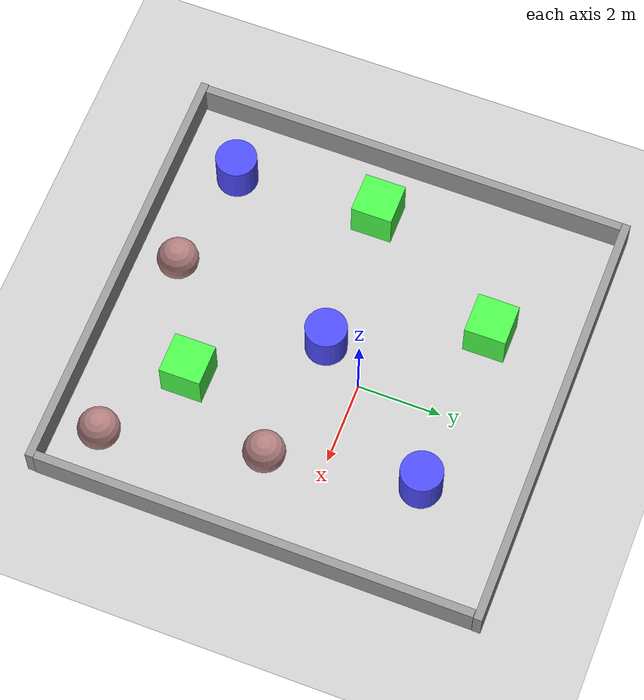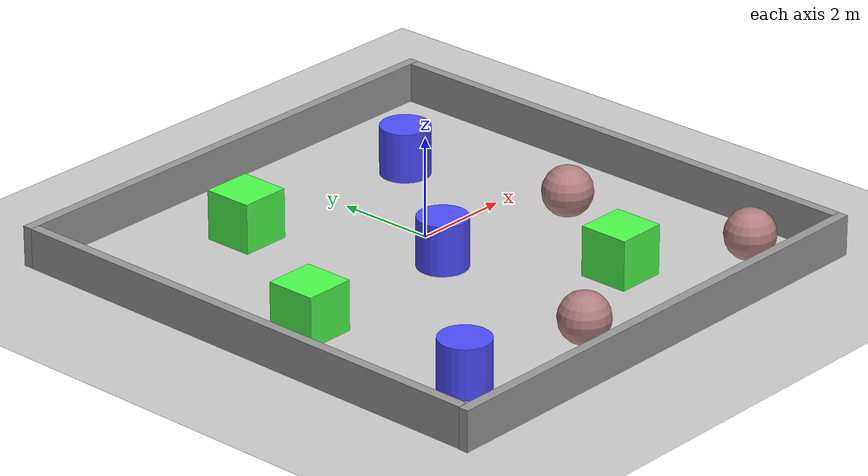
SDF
<sdf version="1.6">
 <world name="default">
  <light name="sun" type="directional">
   <pose>0 0 10 0 -0 0</pose>
   <diffuse>0.8 0.8 0.8 1</diffuse>
   <specular>0.1 0.1 0.1 1</specular>
   <attenuation>
    <range>1000</range>
    <constant>0.9</constant>
    <linear>0.01</linear>
    <quadratic>0.001</quadratic>
   </attenuation>
   <direction>-0.5 0.5 -1</direction>
  </light>
  <model name="ground_plane">
   <static>1</static>
   <link name="link">
    <collision name="collision">
     <geometry><plane><normal>0 0 1</normal><size>100 100</size></plane></geometry>
     <surface><friction><ode><mu>100</mu><mu2>50</mu2></ode></friction></surface>
    </collision>
    <visual name="visual">
     <cast_shadows>0</cast_shadows>
     <geometry><plane><normal>0 0 1</normal><size>100 100</size></plane></geometry>
     <material>
      <script><uri>file://media/materials/scripts/gazebo.material</uri><name>Gazebo/Grey</name></script>
     </material>
    </visual>
   </link>
  </model>
  <gravity>0 0 -9.8</gravity>
  <magnetic_field>6e-06 2.3e-05 -4.2e-05</magnetic_field>
  <atmosphere type="adiabatic"/>
  <physics name="default_physics" default="0" type="ode">
   <max_step_size>0.001</max_step_size>
   <real_time_factor>1</real_time_factor>
   <real_time_update_rate>1000</real_time_update_rate>
  </physics>
  <scene><ambient>0.4 0.4 0.4 1</ambient><background>0.7 0.7 0.7 1</background><shadows>1</shadows></scene>
  <spherical_coordinates>
   <surface_model>EARTH_WGS84</surface_model>
   <latitude_deg>0</latitude_deg>
   <longitude_deg>0</longitude_deg>
   <elevation>0</elevation>
   <heading_deg>0</heading_deg>
  </spherical_coordinates>
  <model name="unit_box_0_3_0">
   <link name="link">
    <inertial>
     <mass>1</mass>
     <inertia>
      <ixx>0.166667</ixx>
      <ixy>0</ixy>
      <ixz>0</ixz>
      <iyy>0.166667</iyy>
      <iyz>0</iyz>
      <izz>0.166667</izz>
     </inertia>
    </inertial>
    <visual name="visual">
     <geometry><box><size>1 1 1</size></box></geometry>
     <material>
      <script><name>Gazebo/Grey</name><uri>file://media/materials/scripts/gazebo.material</uri></script>
      <ambient>0.3 1 0.3 1</ambient>
      <diffuse>0.7 0.7 0.7 1</diffuse>
      <specular>0.01 0.01 0.01 1</specular>
      <emissive>0 0 0 1</emissive>
      <shader type="vertex"><normal_map>__default__</normal_map></shader>
     </material>
    </visual>
    <collision name="collision">
     <geometry><box><size>1 1 1</size></box></geometry>
     <surface>
      <friction>
       <ode><mu>1</mu><mu2>1</mu2><fdir1>0 0 0</fdir1><slip1>0</slip1><slip2>0</slip2></ode>
       <torsional>
        <coefficient>1</coefficient>
        <patch_radius>0</patch_radius>
        <surface_radius>0</surface_radius>
        <use_patch_radius>1</use_patch_radius>
        <ode><slip>0</slip></ode>
       </torsional>
      </friction>
      <bounce><restitution_coefficient>0</restitution_coefficient><threshold>1e+06</threshold></bounce>
      <contact>
       <collide_without_contact>0</collide_without_contact>
       <collide_without_contact_bitmask>1</collide_without_contact_bitmask>
       <collide_bitmask>1</collide_bitmask>
       <ode>
        <soft_cfm>0</soft_cfm>
        <soft_erp>0.2</soft_erp>
        <kp>1e+13</kp>
        <kd>1</kd>
        <max_vel>0.01</max_vel>
        <min_depth>0</min_depth>
       </ode>
       <bullet>
        <split_impulse>1</split_impulse>
        <split_impulse_penetration_threshold>-0.01</split_impulse_penetration_threshold>
        <soft_cfm>0</soft_cfm>
        <soft_erp>0.2</soft_erp>
        <kp>1e+13</kp>
        <kd>1</kd>
       </bullet>
      </contact>
     </surface>
    </collision>
   </link>
   <static>0</static>
   <pose>-4.31105 -1.13217 0.499995 -1e-05 0 0</pose>
  </model>
  <model name="unit_cylinder_0_0">
   <link name="link">
    <inertial>
     <mass>1</mass>
     <inertia><ixx>0.145833</ixx><ixy>0</ixy><ixz>0</ixz><iyy>0.145833</iyy><iyz>0</iyz><izz>0.125</izz></inertia>
    </inertial>
    <visual name="visual">
     <geometry><cylinder><radius>0.5</radius><length>1</length></cylinder></geometry>
     <material>
      <script><name>Gazebo/Grey</name><uri>file://media/materials/scripts/gazebo.material</uri></script>
      <ambient>0.3 0.3 1 1</ambient>
      <diffuse>0.7 0.7 0.7 1</diffuse>
      <specular>0.01 0.01 0.01 1</specular>
      <emissive>0 0 0 1</emissive>
      <shader type="vertex"><normal_map>__default__</normal_map></shader>
     </material>
    </visual>
    <collision name="collision">
     <geometry><cylinder><radius>0.5</radius><length>1</length></cylinder></geometry>
     <surface>
      <friction>
       <ode><mu>1</mu><mu2>1</mu2><fdir1>0 0 0</fdir1><slip1>0</slip1><slip2>0</slip2></ode>
       <torsional>
        <coefficient>1</coefficient>
        <patch_radius>0</patch_radius>
        <surface_radius>0</surface_radius>
        <use_patch_radius>1</use_patch_radius>
        <ode><slip>0</slip></ode>
       </torsional>
      </friction>
      <bounce><restitution_coefficient>0</restitution_coefficient><threshold>1e+06</threshold></bounce>
      <contact>
       <collide_without_contact>0</collide_without_contact>
       <collide_without_contact_bitmask>1</collide_without_contact_bitmask>
       <collide_bitmask>1</collide_bitmask>
       <ode>
        <soft_cfm>0</soft_cfm>
        <soft_erp>0.2</soft_erp>
        <kp>1e+13</kp>
        <kd>1</kd>
        <max_vel>0.01</max_vel>
        <min_depth>0</min_depth>
       </ode>
       <bullet>
        <split_impulse>1</split_impulse>
        <split_impulse_penetration_threshold>-0.01</split_impulse_penetration_threshold>
        <soft_cfm>0</soft_cfm>
        <soft_erp>0.2</soft_erp>
        <kp>1e+13</kp>
        <kd>1</kd>
       </bullet>
      </contact>
     </surface>
    </collision>
   </link>
   <static>0</static>
   <pose>-4.14031 -4.66591 0.499998 3e-06 2e-06 0</pose>
  </model>
  <model name="unit_sphere_0_1_1">
   <link name="link">
    <inertial>
     <mass>1</mass>
     <inertia><ixx>0.1</ixx><ixy>0</ixy><ixz>0</ixz><iyy>0.1</iyy><iyz>0</iyz><izz>0.1</izz></inertia>
    </inertial>
    <visual name="visual">
     <geometry><sphere><radius>0.5</radius></sphere></geometry>
     <material>
      <script><name>Gazebo/Grey</name><uri>file://media/materials/scripts/gazebo.material</uri></script>
      <ambient>0.7 0.5 0.5 1</ambient>
      <diffuse>0.7 0.7 0.7 1</diffuse>
      <specular>0.01 0.01 0.01 1</specular>
      <emissive>0 0 0 1</emissive>
      <shader type="vertex"><normal_map>__default__</normal_map></shader>
     </material>
    </visual>
    <collision name="collision">
     <geometry><sphere><radius>0.5</radius></sphere></geometry>
     <surface>
      <friction>
       <ode><mu>1</mu><mu2>1</mu2><fdir1>0 0 0</fdir1><slip1>0</slip1><slip2>0</slip2></ode>
       <torsional>
        <coefficient>1</coefficient>
        <patch_radius>0</patch_radius>
        <surface_radius>0</surface_radius>
        <use_patch_radius>1</use_patch_radius>
        <ode><slip>0</slip></ode>
       </torsional>
      </friction>
      <bounce><restitution_coefficient>0</restitution_coefficient><threshold>1e+06</threshold></bounce>
      <contact>
       <collide_without_contact>0</collide_without_contact>
       <collide_without_contact_bitmask>1</collide_without_contact_bitmask>
       <collide_bitmask>1</collide_bitmask>
       <ode>
        <soft_cfm>0</soft_cfm>
        <soft_erp>0.2</soft_erp>
        <kp>1e+13</kp>
        <kd>1</kd>
        <max_vel>0.01</max_vel>
        <min_depth>0</min_depth>
       </ode>
       <bullet>
        <split_impulse>1</split_impulse>
        <split_impulse_penetration_threshold>-0.01</split_impulse_penetration_threshold>
        <soft_cfm>0</soft_cfm>
        <soft_erp>0.2</soft_erp>
        <kp>1e+13</kp>
        <kd>1</kd>
       </bullet>
      </contact>
     </surface>
    </collision>
   </link>
   <static>0</static>
   <pose>-1.39119 -5.05248 0.5 0 -0 0</pose>
  </model>
  <model name="unit_box_0_3_0_clone">
   <link name="link">
    <inertial>
     <mass>1</mass>
     <inertia>
      <ixx>0.166667</ixx>
      <ixy>0</ixy>
      <ixz>0</ixz>
      <iyy>0.166667</iyy>
      <iyz>0</iyz>
      <izz>0.166667</izz>
     </inertia>
    </inertial>
    <visual name="visual">
     <geometry><box><size>1 1 1</size></box></geometry>
     <material>
      <script><name>Gazebo/Grey</name><uri>file://media/materials/scripts/gazebo.material</uri></script>
      <ambient>0.3 1 0.3 1</ambient>
      <diffuse>0.7 0.7 0.7 1</diffuse>
      <specular>0.01 0.01 0.01 1</specular>
      <emissive>0 0 0 1</emissive>
      <shader type="vertex"><normal_map>__default__</normal_map></shader>
     </material>
    </visual>
    <collision name="collision">
     <geometry><box><size>1 1 1</size></box></geometry>
     <surface>
      <friction>
       <ode><mu>1</mu><mu2>1</mu2><fdir1>0 0 0</fdir1><slip1>0</slip1><slip2>0</slip2></ode>
       <torsional>
        <coefficient>1</coefficient>
        <patch_radius>0</patch_radius>
        <surface_radius>0</surface_radius>
        <use_patch_radius>1</use_patch_radius>
        <ode><slip>0</slip></ode>
       </torsional>
      </friction>
      <bounce><restitution_coefficient>0</restitution_coefficient><threshold>1e+06</threshold></bounce>
      <contact>
       <collide_without_contact>0</collide_without_contact>
       <collide_without_contact_bitmask>1</collide_without_contact_bitmask>
       <collide_bitmask>1</collide_bitmask>
       <ode>
        <soft_cfm>0</soft_cfm>
        <soft_erp>0.2</soft_erp>
        <kp>1e+13</kp>
        <kd>1</kd>
        <max_vel>0.01</max_vel>
        <min_depth>0</min_depth>
       </ode>
       <bullet>
        <split_impulse>1</split_impulse>
        <split_impulse_penetration_threshold>-0.01</split_impulse_penetration_threshold>
        <soft_cfm>0</soft_cfm>
        <soft_erp>0.2</soft_erp>
        <kp>1e+13</kp>
        <kd>1</kd>
       </bullet>
      </contact>
     </surface>
    </collision>
   </link>
   <static>0</static>
   <pose>1.16836 -3.73906 0.499995 -1e-05 0 0</pose>
  </model>
  <model name="unit_cylinder_0_0_clone">
   <link name="link">
    <inertial>
     <mass>1</mass>
     <inertia><ixx>0.145833</ixx><ixy>0</ixy><ixz>0</ixz><iyy>0.145833</iyy><iyz>0</iyz><izz>0.125</izz></inertia>
    </inertial>
    <visual name="visual">
     <geometry><cylinder><radius>0.5</radius><length>1</length></cylinder></geometry>
     <material>
      <script><name>Gazebo/Grey</name><uri>file://media/materials/scripts/gazebo.material</uri></script>
      <ambient>0.3 0.3 1 1</ambient>
      <diffuse>0.7 0.7 0.7 1</diffuse>
      <specular>0.01 0.01 0.01 1</specular>
      <emissive>0 0 0 1</emissive>
      <shader type="vertex"><normal_map>__default__</normal_map></shader>
     </material>
    </visual>
    <collision name="collision">
     <geometry><cylinder><radius>0.5</radius><length>1</length></cylinder></geometry>
     <surface>
      <friction>
       <ode><mu>1</mu><mu2>1</mu2><fdir1>0 0 0</fdir1><slip1>0</slip1><slip2>0</slip2></ode>
       <torsional>
        <coefficient>1</coefficient>
        <patch_radius>0</patch_radius>
        <surface_radius>0</surface_radius>
        <use_patch_radius>1</use_patch_radius>
        <ode><slip>0</slip></ode>
       </torsional>
      </friction>
      <bounce><restitution_coefficient>0</restitution_coefficient><threshold>1e+06</threshold></bounce>
      <contact>
       <collide_without_contact>0</collide_without_contact>
       <collide_without_contact_bitmask>1</collide_without_contact_bitmask>
       <collide_bitmask>1</collide_bitmask>
       <ode>
        <soft_cfm>0</soft_cfm>
        <soft_erp>0.2</soft_erp>
        <kp>1e+13</kp>
        <kd>1</kd>
        <max_vel>0.01</max_vel>
        <min_depth>0</min_depth>
       </ode>
       <bullet>
        <split_impulse>1</split_impulse>
        <split_impulse_penetration_threshold>-0.01</split_impulse_penetration_threshold>
        <soft_cfm>0</soft_cfm>
        <soft_erp>0.2</soft_erp>
        <kp>1e+13</kp>
        <kd>1</kd>
       </bullet>
      </contact>
     </surface>
    </collision>
   </link>
   <static>0</static>
   <pose>-0.70298 -1.069 0.499992 -3e-06 -2e-06 0</pose>
  </model>
  <model name="unit_cylinder_0_0_clone_0">
   <link name="link">
    <inertial>
     <mass>1</mass>
     <inertia><ixx>0.145833</ixx><ixy>0</ixy><ixz>0</ixz><iyy>0.145833</iyy><iyz>0</iyz><izz>0.125</izz></inertia>
    </inertial>
    <visual name="visual">
     <geometry><cylinder><radius>0.5</radius><length>1</length></cylinder></geometry>
     <material>
      <script><name>Gazebo/Grey</name><uri>file://media/materials/scripts/gazebo.material</uri></script>
      <ambient>0.3 0.3 1 1</ambient>
      <diffuse>0.7 0.7 0.7 1</diffuse>
      <specular>0.01 0.01 0.01 1</specular>
      <emissive>0 0 0 1</emissive>
      <shader type="vertex"><normal_map>__default__</normal_map></shader>
     </material>
    </visual>
    <collision name="collision">
     <geometry><cylinder><radius>0.5</radius><length>1</length></cylinder></geometry>
     <surface>
      <friction>
       <ode><mu>1</mu><mu2>1</mu2><fdir1>0 0 0</fdir1><slip1>0</slip1><slip2>0</slip2></ode>
       <torsional>
        <coefficient>1</coefficient>
        <patch_radius>0</patch_radius>
        <surface_radius>0</surface_radius>
        <use_patch_radius>1</use_patch_radius>
        <ode><slip>0</slip></ode>
       </torsional>
      </friction>
      <bounce><restitution_coefficient>0</restitution_coefficient><threshold>1e+06</threshold></bounce>
      <contact>
       <collide_without_contact>0</collide_without_contact>
       <collide_without_contact_bitmask>1</collide_without_contact_bitmask>
       <collide_bitmask>1</collide_bitmask>
       <ode>
        <soft_cfm>0</soft_cfm>
        <soft_erp>0.2</soft_erp>
        <kp>1e+13</kp>
        <kd>1</kd>
        <max_vel>0.01</max_vel>
        <min_depth>0</min_depth>
       </ode>
       <bullet>
        <split_impulse>1</split_impulse>
        <split_impulse_penetration_threshold>-0.01</split_impulse_penetration_threshold>
        <soft_cfm>0</soft_cfm>
        <soft_erp>0.2</soft_erp>
        <kp>1e+13</kp>
        <kd>1</kd>
       </bullet>
      </contact>
     </surface>
    </collision>
   </link>
   <static>0</static>
   <pose>1.87851 2.21011 0.499997 3e-06 4e-06 -0</pose>
  </model>
  <model name="unit_box_0_3_0_clone_0">
   <link name="link">
    <inertial>
     <mass>1</mass>
     <inertia>
      <ixx>0.166667</ixx>
      <ixy>0</ixy>
      <ixz>0</ixz>
      <iyy>0.166667</iyy>
      <iyz>0</iyz>
      <izz>0.166667</izz>
     </inertia>
    </inertial>
    <visual name="visual">
     <geometry><box><size>1 1 1</size></box></geometry>
     <material>
      <script><name>Gazebo/Grey</name><uri>file://media/materials/scripts/gazebo.material</uri></script>
      <ambient>0.3 1 0.3 1</ambient>
      <diffuse>0.7 0.7 0.7 1</diffuse>
      <specular>0.01 0.01 0.01 1</specular>
      <emissive>0 0 0 1</emissive>
      <shader type="vertex"><normal_map>__default__</normal_map></shader>
     </material>
    </visual>
    <collision name="collision">
     <geometry><box><size>1 1 1</size></box></geometry>
     <surface>
      <friction>
       <ode><mu>1</mu><mu2>1</mu2><fdir1>0 0 0</fdir1><slip1>0</slip1><slip2>0</slip2></ode>
       <torsional>
        <coefficient>1</coefficient>
        <patch_radius>0</patch_radius>
        <surface_radius>0</surface_radius>
        <use_patch_radius>1</use_patch_radius>
        <ode><slip>0</slip></ode>
       </torsional>
      </friction>
      <bounce><restitution_coefficient>0</restitution_coefficient><threshold>1e+06</threshold></bounce>
      <contact>
       <collide_without_contact>0</collide_without_contact>
       <collide_without_contact_bitmask>1</collide_without_contact_bitmask>
       <collide_bitmask>1</collide_bitmask>
       <ode>
        <soft_cfm>0</soft_cfm>
        <soft_erp>0.2</soft_erp>
        <kp>1e+13</kp>
        <kd>1</kd>
        <max_vel>0.01</max_vel>
        <min_depth>0</min_depth>
       </ode>
       <bullet>
        <split_impulse>1</split_impulse>
        <split_impulse_penetration_threshold>-0.01</split_impulse_penetration_threshold>
        <soft_cfm>0</soft_cfm>
        <soft_erp>0.2</soft_erp>
        <kp>1e+13</kp>
        <kd>1</kd>
       </bullet>
      </contact>
     </surface>
    </collision>
   </link>
   <static>0</static>
   <pose>-2.26872 2.41107 0.499995 -1e-05 0 0</pose>
  </model>
  <model name="unit_sphere_0_1_1_clone">
   <link name="link">
    <inertial>
     <mass>1</mass>
     <inertia><ixx>0.1</ixx><ixy>0</ixy><ixz>0</ixz><iyy>0.1</iyy><iyz>0</iyz><izz>0.1</izz></inertia>
    </inertial>
    <visual name="visual">
     <geometry><sphere><radius>0.5</radius></sphere></geometry>
     <material>
      <script><name>Gazebo/Grey</name><uri>file://media/materials/scripts/gazebo.material</uri></script>
      <ambient>0.7 0.5 0.5 1</ambient>
      <diffuse>0.7 0.7 0.7 1</diffuse>
      <specular>0.01 0.01 0.01 1</specular>
      <emissive>0 0 0 1</emissive>
      <shader type="vertex"><normal_map>__default__</normal_map></shader>
     </material>
    </visual>
    <collision name="collision">
     <geometry><sphere><radius>0.5</radius></sphere></geometry>
     <surface>
      <friction>
       <ode><mu>1</mu><mu2>1</mu2><fdir1>0 0 0</fdir1><slip1>0</slip1><slip2>0</slip2></ode>
       <torsional>
        <coefficient>1</coefficient>
        <patch_radius>0</patch_radius>
        <surface_radius>0</surface_radius>
        <use_patch_radius>1</use_patch_radius>
        <ode><slip>0</slip></ode>
       </torsional>
      </friction>
      <bounce><restitution_coefficient>0</restitution_coefficient><threshold>1e+06</threshold></bounce>
      <contact>
       <collide_without_contact>0</collide_without_contact>
       <collide_without_contact_bitmask>1</collide_without_contact_bitmask>
       <collide_bitmask>1</collide_bitmask>
       <ode>
        <soft_cfm>0</soft_cfm>
        <soft_erp>0.2</soft_erp>
        <kp>1e+13</kp>
        <kd>1</kd>
        <max_vel>0.01</max_vel>
        <min_depth>0</min_depth>
       </ode>
       <bullet>
        <split_impulse>1</split_impulse>
        <split_impulse_penetration_threshold>-0.01</split_impulse_penetration_threshold>
        <soft_cfm>0</soft_cfm>
        <soft_erp>0.2</soft_erp>
        <kp>1e+13</kp>
        <kd>1</kd>
       </bullet>
      </contact>
     </surface>
    </collision>
   </link>
   <static>0</static>
   <pose>2.48528 -1.34556 0.5 0 -0 0</pose>
  </model>
  <model name="unit_sphere_0_1_1_clone_0">
   <link name="link">
    <inertial>
     <mass>1</mass>
     <inertia><ixx>0.1</ixx><ixy>0</ixy><ixz>0</ixz><iyy>0.1</iyy><iyz>0</iyz><izz>0.1</izz></inertia>
    </inertial>
    <visual name="visual">
     <geometry><sphere><radius>0.5</radius></sphere></geometry>
     <material>
      <script><name>Gazebo/Grey</name><uri>file://media/materials/scripts/gazebo.material</uri></script>
      <ambient>0.7 0.5 0.5 1</ambient>
      <diffuse>0.7 0.7 0.7 1</diffuse>
      <specular>0.01 0.01 0.01 1</specular>
      <emissive>0 0 0 1</emissive>
      <shader type="vertex"><normal_map>__default__</normal_map></shader>
     </material>
    </visual>
    <collision name="collision">
     <geometry><sphere><radius>0.5</radius></sphere></geometry>
     <surface>
      <friction>
       <ode><mu>1</mu><mu2>1</mu2><fdir1>0 0 0</fdir1><slip1>0</slip1><slip2>0</slip2></ode>
       <torsional>
        <coefficient>1</coefficient>
        <patch_radius>0</patch_radius>
        <surface_radius>0</surface_radius>
        <use_patch_radius>1</use_patch_radius>
        <ode><slip>0</slip></ode>
       </torsional>
      </friction>
      <bounce><restitution_coefficient>0</restitution_coefficient><threshold>1e+06</threshold></bounce>
      <contact>
       <collide_without_contact>0</collide_without_contact>
       <collide_without_contact_bitmask>1</collide_without_contact_bitmask>
       <collide_bitmask>1</collide_bitmask>
       <ode>
        <soft_cfm>0</soft_cfm>
        <soft_erp>0.2</soft_erp>
        <kp>1e+13</kp>
        <kd>1</kd>
        <max_vel>0.01</max_vel>
        <min_depth>0</min_depth>
       </ode>
       <bullet>
        <split_impulse>1</split_impulse>
        <split_impulse_penetration_threshold>-0.01</split_impulse_penetration_threshold>
        <soft_cfm>0</soft_cfm>
        <soft_erp>0.2</soft_erp>
        <kp>1e+13</kp>
        <kd>1</kd>
       </bullet>
      </contact>
     </surface>
    </collision>
   </link>
   <static>0</static>
   <pose>3.29019 -5.06241 0.5 0 -0 0</pose>
  </model>
  <model name="Wall_1">
   <link name="link">
    <pose>0 0 1.4 0 -0 0</pose>
    <inertial>
     <mass>1</mass>
     <inertia><ixx>1</ixx><ixy>0</ixy><ixz>0</ixz><iyy>1</iyy><iyz>0</iyz><izz>1</izz></inertia>
    </inertial>
    <visual name="visual">
     <cast_shadows>0</cast_shadows>
     <geometry><box><size>10.5 0.2 0.8</size></box></geometry>
     <material>
      <script>
       <uri>model://grey_wall/materials/scripts</uri>
       <uri>model://grey_wall/materials/textures</uri>
       <name>vrc/grey_wall</name>
      </script>
      <ambient>1 1 1 1</ambient>
      <diffuse>1 1 1 1</diffuse>
      <specular>0 0 0 1</specular>
      <emissive>0 0 0 1</emissive>
      <shader type="vertex"><normal_map>__default__</normal_map></shader>
     </material>
    </visual>
    <collision name="collision">
     <geometry><box><size>10.5 0.2 0.8</size></box></geometry>
     <surface>
      <friction>
       <ode><mu>1</mu><mu2>1</mu2><fdir1>0 0 0</fdir1><slip1>0</slip1><slip2>0</slip2></ode>
       <torsional>
        <coefficient>1</coefficient>
        <patch_radius>0</patch_radius>
        <surface_radius>0</surface_radius>
        <use_patch_radius>1</use_patch_radius>
        <ode><slip>0</slip></ode>
       </torsional>
      </friction>
      <bounce><restitution_coefficient>0</restitution_coefficient><threshold>1e+06</threshold></bounce>
      <contact>
       <collide_without_contact>0</collide_without_contact>
       <collide_without_contact_bitmask>1</collide_without_contact_bitmask>
       <collide_bitmask>1</collide_bitmask>
       <ode>
        <soft_cfm>0</soft_cfm>
        <soft_erp>0.2</soft_erp>
        <kp>1e+13</kp>
        <kd>1</kd>
        <max_vel>0.01</max_vel>
        <min_depth>0</min_depth>
       </ode>
       <bullet>
        <split_impulse>1</split_impulse>
        <split_impulse_penetration_threshold>-0.01</split_impulse_penetration_threshold>
        <soft_cfm>0</soft_cfm>
        <soft_erp>0.2</soft_erp>
        <kp>1e+13</kp>
        <kd>1</kd>
       </bullet>
      </contact>
     </surface>
    </collision>
   </link>
   <static>1</static>
   <pose>-0.645489 -6.18801 -1.00001 0 -0 0</pose>
  </model>
  <model name="Wall_1_clone">
   <link name="link">
    <pose>0 0 1.4 0 -0 0</pose>
    <inertial>
     <mass>1</mass>
     <inertia><ixx>1</ixx><ixy>0</ixy><ixz>0</ixz><iyy>1</iyy><iyz>0</iyz><izz>1</izz></inertia>
    </inertial>
    <visual name="visual">
     <cast_shadows>0</cast_shadows>
     <geometry><box><size>10.5 0.2 0.8</size></box></geometry>
     <material>
      <script>
       <uri>model://grey_wall/materials/scripts</uri>
       <uri>model://grey_wall/materials/textures</uri>
       <name>vrc/grey_wall</name>
      </script>
      <ambient>1 1 1 1</ambient>
      <diffuse>1 1 1 1</diffuse>
      <specular>0 0 0 1</specular>
      <emissive>0 0 0 1</emissive>
      <shader type="vertex"><normal_map>__default__</normal_map></shader>
     </material>
    </visual>
    <collision name="collision">
     <geometry><box><size>10.5 0.2 0.8</size></box></geometry>
     <surface>
      <friction>
       <ode><mu>1</mu><mu2>1</mu2><fdir1>0 0 0</fdir1><slip1>0</slip1><slip2>0</slip2></ode>
       <torsional>
        <coefficient>1</coefficient>
        <patch_radius>0</patch_radius>
        <surface_radius>0</surface_radius>
        <use_patch_radius>1</use_patch_radius>
        <ode><slip>0</slip></ode>
       </torsional>
      </friction>
      <bounce><restitution_coefficient>0</restitution_coefficient><threshold>1e+06</threshold></bounce>
      <contact>
       <collide_without_contact>0</collide_without_contact>
       <collide_without_contact_bitmask>1</collide_without_contact_bitmask>
       <collide_bitmask>1</collide_bitmask>
       <ode>
        <soft_cfm>0</soft_cfm>
        <soft_erp>0.2</soft_erp>
        <kp>1e+13</kp>
        <kd>1</kd>
        <max_vel>0.01</max_vel>
        <min_depth>0</min_depth>
       </ode>
       <bullet>
        <split_impulse>1</split_impulse>
        <split_impulse_penetration_threshold>-0.01</split_impulse_penetration_threshold>
        <soft_cfm>0</soft_cfm>
        <soft_erp>0.2</soft_erp>
        <kp>1e+13</kp>
        <kd>1</kd>
       </bullet>
      </contact>
     </surface>
    </collision>
   </link>
   <static>1</static>
   <pose>-0.575753 4.52479 -1.00001 0 -0 0</pose>
  </model>
  <model name="Wall_1_clone_0">
   <link name="link">
    <pose>0 0 1.4 0 -0 0</pose>
    <inertial>
     <mass>1</mass>
     <inertia><ixx>1</ixx><ixy>0</ixy><ixz>0</ixz><iyy>1</iyy><iyz>0</iyz><izz>1</izz></inertia>
    </inertial>
    <visual name="visual">
     <cast_shadows>0</cast_shadows>
     <geometry><box><size>10.5 0.2 0.8</size></box></geometry>
     <material>
      <script>
       <uri>model://grey_wall/materials/scripts</uri>
       <uri>model://grey_wall/materials/textures</uri>
       <name>vrc/grey_wall</name>
      </script>
      <ambient>1 1 1 1</ambient>
      <diffuse>1 1 1 1</diffuse>
      <specular>0 0 0 1</specular>
      <emissive>0 0 0 1</emissive>
      <shader type="vertex"><normal_map>__default__</normal_map></shader>
     </material>
    </visual>
    <collision name="collision">
     <geometry><box><size>10.5 0.2 0.8</size></box></geometry>
     <surface>
      <friction>
       <ode><mu>1</mu><mu2>1</mu2><fdir1>0 0 0</fdir1><slip1>0</slip1><slip2>0</slip2></ode>
       <torsional>
        <coefficient>1</coefficient>
        <patch_radius>0</patch_radius>
        <surface_radius>0</surface_radius>
        <use_patch_radius>1</use_patch_radius>
        <ode><slip>0</slip></ode>
       </torsional>
      </friction>
      <bounce><restitution_coefficient>0</restitution_coefficient><threshold>1e+06</threshold></bounce>
      <contact>
       <collide_without_contact>0</collide_without_contact>
       <collide_without_contact_bitmask>1</collide_without_contact_bitmask>
       <collide_bitmask>1</collide_bitmask>
       <ode>
        <soft_cfm>0</soft_cfm>
        <soft_erp>0.2</soft_erp>
        <kp>1e+13</kp>
        <kd>1</kd>
        <max_vel>0.01</max_vel>
        <min_depth>0</min_depth>
       </ode>
       <bullet>
        <split_impulse>1</split_impulse>
        <split_impulse_penetration_threshold>-0.01</split_impulse_penetration_threshold>
        <soft_cfm>0</soft_cfm>
        <soft_erp>0.2</soft_erp>
        <kp>1e+13</kp>
        <kd>1</kd>
       </bullet>
      </contact>
     </surface>
    </collision>
   </link>
   <static>1</static>
   <pose>4.54077 -0.835 -1.00001 0 0 -1.57552</pose>
  </model>
  <model name="Wall_1_clone_0_clone">
   <link name="link">
    <pose>0 0 1.4 0 -0 0</pose>
    <inertial>
     <mass>1</mass>
     <inertia><ixx>1</ixx><ixy>0</ixy><ixz>0</ixz><iyy>1</iyy><iyz>0</iyz><izz>1</izz></inertia>
    </inertial>
    <visual name="visual">
     <cast_shadows>0</cast_shadows>
     <geometry><box><size>10.5 0.2 0.8</size></box></geometry>
     <material>
      <script>
       <uri>model://grey_wall/materials/scripts</uri>
       <uri>model://grey_wall/materials/textures</uri>
       <name>vrc/grey_wall</name>
      </script>
      <ambient>1 1 1 1</ambient>
      <diffuse>1 1 1 1</diffuse>
      <specular>0 0 0 1</specular>
      <emissive>0 0 0 1</emissive>
      <shader type="vertex"><normal_map>__default__</normal_map></shader>
     </material>
    </visual>
    <collision name="collision">
     <geometry><box><size>10.5 0.2 0.8</size></box></geometry>
     <surface>
      <friction>
       <ode><mu>1</mu><mu2>1</mu2><fdir1>0 0 0</fdir1><slip1>0</slip1><slip2>0</slip2></ode>
       <torsional>
        <coefficient>1</coefficient>
        <patch_radius>0</patch_radius>
        <surface_radius>0</surface_radius>
        <use_patch_radius>1</use_patch_radius>
        <ode><slip>0</slip></ode>
       </torsional>
      </friction>
      <bounce><restitution_coefficient>0</restitution_coefficient><threshold>1e+06</threshold></bounce>
      <contact>
       <collide_without_contact>0</collide_without_contact>
       <collide_without_contact_bitmask>1</collide_without_contact_bitmask>
       <collide_bitmask>1</collide_bitmask>
       <ode>
        <soft_cfm>0</soft_cfm>
        <soft_erp>0.2</soft_erp>
        <kp>1e+13</kp>
        <kd>1</kd>
        <max_vel>0.01</max_vel>
        <min_depth>0</min_depth>
       </ode>
       <bullet>
        <split_impulse>1</split_impulse>
        <split_impulse_penetration_threshold>-0.01</split_impulse_penetration_threshold>
        <soft_cfm>0</soft_cfm>
        <soft_erp>0.2</soft_erp>
        <kp>1e+13</kp>
        <kd>1</kd>
       </bullet>
      </contact>
     </surface>
    </collision>
   </link>
   <static>1</static>
   <pose>-5.75426 -0.82976 -1.00001 0 0 -1.57552</pose>
  </model>
 </world>
</sdf>
